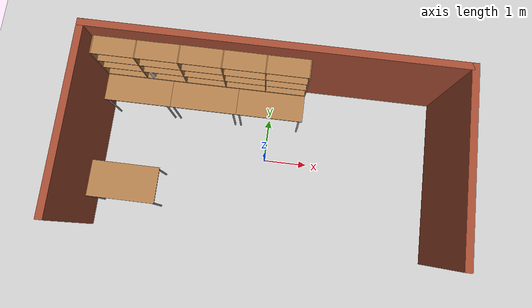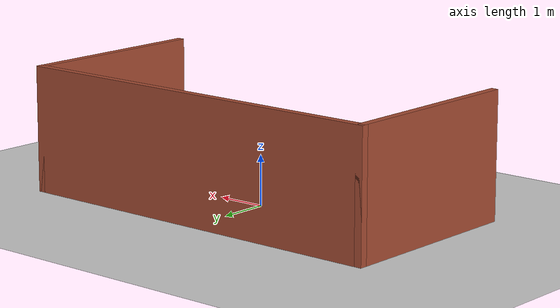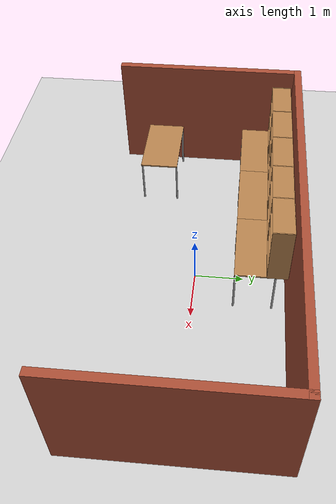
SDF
<sdf version="1.6">
 <world name="default">
  <light name="sun" type="directional">
   <pose>0 0 10 0 -0 0</pose>
   <diffuse>0.8 0.8 0.8 1</diffuse>
   <specular>0.2 0.2 0.2 1</specular>
   <attenuation>
    <range>1000</range>
    <constant>0.9</constant>
    <linear>0.01</linear>
    <quadratic>0.001</quadratic>
   </attenuation>
   <direction>-0.5 0.1 -0.9</direction>
  </light>
  <model name="ground_plane">
   <static>1</static>
   <link name="link">
    <collision name="collision">
     <geometry><plane><normal>0 0 1</normal><size>100 100</size></plane></geometry>
     <surface>
      <contact><collide_bitmask>65535</collide_bitmask></contact>
      <friction><ode><mu>100</mu><mu2>50</mu2></ode></friction>
     </surface>
    </collision>
    <visual name="visual">
     <cast_shadows>0</cast_shadows>
     <geometry><plane><normal>0 0 1</normal><size>100 100</size></plane></geometry>
     <material>
      <script><uri>file://media/materials/scripts/gazebo.material</uri><name>Gazebo/Grey</name></script>
     </material>
    </visual>
   </link>
  </model>
  <gravity>0 0 -9.8</gravity>
  <magnetic_field>6e-06 2.3e-05 -4.2e-05</magnetic_field>
  <atmosphere type="adiabatic"/>
  <physics name="default_physics" default="0" type="ode">
   <max_step_size>0.001</max_step_size>
   <real_time_factor>1</real_time_factor>
   <real_time_update_rate>1000</real_time_update_rate>
  </physics>
  <scene><ambient>0.4 0.4 0.4 1</ambient><background>0.7 0.7 0.7 1</background><shadows>1</shadows></scene>
  <audio><device>default</device></audio>
  <spherical_coordinates>
   <surface_model>EARTH_WGS84</surface_model>
   <latitude_deg>0</latitude_deg>
   <longitude_deg>0</longitude_deg>
   <elevation>0</elevation>
   <heading_deg>0</heading_deg>
  </spherical_coordinates>
  <model name="Bar">
   <link name="Wall_21">
    <collision name="Wall_21_Collision">
     <geometry><box><size>4 0.15 2.5</size></box></geometry>
     <pose>0 0 1.25 0 -0 0</pose>
    </collision>
    <visual name="Wall_21_Visual">
     <pose>0 0 1.25 0 -0 0</pose>
     <geometry><box><size>4 0.15 2.5</size></box></geometry>
     <material>
      <script><uri>file://media/materials/scripts/gazebo.material</uri><name>Gazebo/Bricks</name></script>
      <ambient>1 1 1 1</ambient>
     </material>
     <meta><layer>0</layer></meta>
    </visual>
    <pose>-3.925 0 0 0 -0 -1.5708</pose>
   </link>
   <link name="Wall_23">
    <collision name="Wall_23_Collision">
     <geometry><box><size>8 0.15 2.5</size></box></geometry>
     <pose>0 0 1.25 0 -0 0</pose>
    </collision>
    <visual name="Wall_23_Visual">
     <pose>0 0 1.25 0 -0 0</pose>
     <geometry><box><size>8 0.15 2.5</size></box></geometry>
     <material>
      <script><uri>file://media/materials/scripts/gazebo.material</uri><name>Gazebo/Bricks</name></script>
      <ambient>1 1 1 1</ambient>
     </material>
     <meta><layer>0</layer></meta>
    </visual>
    <pose>0 1.925 0 0 -0 0</pose>
   </link>
   <link name="Wall_25">
    <collision name="Wall_25_Collision">
     <geometry><box><size>4 0.15 2.5</size></box></geometry>
     <pose>0 0 1.25 0 -0 0</pose>
    </collision>
    <visual name="Wall_25_Visual">
     <pose>0 0 1.25 0 -0 0</pose>
     <geometry><box><size>4 0.15 2.5</size></box></geometry>
     <material>
      <script><uri>file://media/materials/scripts/gazebo.material</uri><name>Gazebo/Bricks</name></script>
      <ambient>1 1 1 1</ambient>
     </material>
     <meta><layer>0</layer></meta>
    </visual>
    <pose>3.925 0 0 0 -0 -1.5708</pose>
   </link>
   <static>1</static>
  </model>
  <model name="table">
   <static>1</static>
   <link name="link">
    <collision name="surface">
     <pose>0 0 1 0 -0 0</pose>
     <geometry><box><size>1.5 0.8 0.03</size></box></geometry>
     <surface><friction><ode><mu>0.6</mu><mu2>0.6</mu2></ode></friction></surface>
    </collision>
    <visual name="visual1">
     <pose>0 0 1 0 -0 0</pose>
     <geometry><box><size>1.5 0.8 0.03</size></box></geometry>
     <material>
      <script><uri>file://media/materials/scripts/gazebo.material</uri><name>Gazebo/Wood</name></script>
     </material>
    </visual>
    <collision name="front_left_leg">
     <pose>0.68 0.38 0.5 0 -0 0</pose>
     <geometry><cylinder><radius>0.02</radius><length>1</length></cylinder></geometry>
    </collision>
    <visual name="front_left_leg">
     <pose>0.68 0.38 0.5 0 -0 0</pose>
     <geometry><cylinder><radius>0.02</radius><length>1</length></cylinder></geometry>
     <material>
      <script><uri>file://media/materials/scripts/gazebo.material</uri><name>Gazebo/Grey</name></script>
     </material>
    </visual>
    <collision name="front_right_leg">
     <pose>0.68 -0.38 0.5 0 -0 0</pose>
     <geometry><cylinder><radius>0.02</radius><length>1</length></cylinder></geometry>
    </collision>
    <visual name="front_right_leg">
     <pose>0.68 -0.38 0.5 0 -0 0</pose>
     <geometry><cylinder><radius>0.02</radius><length>1</length></cylinder></geometry>
     <material>
      <script><uri>file://media/materials/scripts/gazebo.material</uri><name>Gazebo/Grey</name></script>
     </material>
    </visual>
    <collision name="back_right_leg">
     <pose>-0.68 -0.38 0.5 0 -0 0</pose>
     <geometry><cylinder><radius>0.02</radius><length>1</length></cylinder></geometry>
    </collision>
    <visual name="back_right_leg">
     <pose>-0.68 -0.38 0.5 0 -0 0</pose>
     <geometry><cylinder><radius>0.02</radius><length>1</length></cylinder></geometry>
     <material>
      <script><uri>file://media/materials/scripts/gazebo.material</uri><name>Gazebo/Grey</name></script>
     </material>
    </visual>
    <collision name="back_left_leg">
     <pose>-0.68 0.38 0.5 0 -0 0</pose>
     <geometry><cylinder><radius>0.02</radius><length>1</length></cylinder></geometry>
    </collision>
    <visual name="back_left_leg">
     <pose>-0.68 0.38 0.5 0 -0 0</pose>
     <geometry><cylinder><radius>0.02</radius><length>1</length></cylinder></geometry>
     <material>
      <script><uri>file://media/materials/scripts/gazebo.material</uri><name>Gazebo/Grey</name></script>
     </material>
    </visual>
   </link>
   <pose>-3 1.2 0 0 -0 0</pose>
  </model>
  <model name="bookshelf">
   <static>1</static>
   <link name="link">
    <inertial><mass>1</mass></inertial>
    <collision name="back">
     <pose>0 0.005 0.6 0 -0 0</pose>
     <geometry><box><size>0.9 0.01 1.2</size></box></geometry>
    </collision>
    <visual name="visual1">
     <pose>0 0.005 0.6 0 -0 0</pose>
     <geometry><box><size>0.9 0.01 1.2</size></box></geometry>
     <material>
      <script><uri>file://media/materials/scripts/gazebo.material</uri><name>Gazebo/Wood</name></script>
     </material>
    </visual>
    <collision name="left_side">
     <pose>0.45 -0.195 0.6 0 -0 0</pose>
     <geometry><box><size>0.02 0.4 1.2</size></box></geometry>
    </collision>
    <visual name="visual2">
     <pose>0.45 -0.195 0.6 0 -0 0</pose>
     <geometry><box><size>0.02 0.4 1.2</size></box></geometry>
     <material>
      <script><uri>file://media/materials/scripts/gazebo.material</uri><name>Gazebo/Wood</name></script>
     </material>
    </visual>
    <collision name="right_side">
     <pose>-0.45 -0.195 0.6 0 -0 0</pose>
     <geometry><box><size>0.02 0.4 1.2</size></box></geometry>
    </collision>
    <visual name="visual3">
     <pose>-0.45 -0.195 0.6 0 -0 0</pose>
     <geometry><box><size>0.02 0.4 1.2</size></box></geometry>
     <material>
      <script><uri>file://media/materials/scripts/gazebo.material</uri><name>Gazebo/Wood</name></script>
     </material>
    </visual>
    <collision name="bottom">
     <pose>0 -0.195 0.03 0 -0 0</pose>
     <geometry><box><size>0.88 0.4 0.06</size></box></geometry>
    </collision>
    <visual name="visual4">
     <pose>0 -0.195 0.03 0 -0 0</pose>
     <geometry><box><size>0.88 0.4 0.06</size></box></geometry>
     <material>
      <script><uri>file://media/materials/scripts/gazebo.material</uri><name>Gazebo/Wood</name></script>
     </material>
    </visual>
    <collision name="top">
     <pose>0 -0.195 1.19 0 -0 0</pose>
     <geometry><box><size>0.88 0.4 0.02</size></box></geometry>
    </collision>
    <visual name="visual5">
     <pose>0 -0.195 1.19 0 -0 0</pose>
     <geometry><box><size>0.88 0.4 0.02</size></box></geometry>
     <material>
      <script><uri>file://media/materials/scripts/gazebo.material</uri><name>Gazebo/Wood</name></script>
     </material>
    </visual>
    <collision name="low_shelf">
     <pose>0 -0.195 0.43 0 -0 0</pose>
     <geometry><box><size>0.88 0.4 0.02</size></box></geometry>
    </collision>
    <visual name="visual6">
     <pose>0 -0.195 0.43 0 -0 0</pose>
     <geometry><box><size>0.88 0.4 0.02</size></box></geometry>
     <material>
      <script><uri>file://media/materials/scripts/gazebo.material</uri><name>Gazebo/Wood</name></script>
     </material>
    </visual>
    <collision name="high_shelf">
     <pose>0 -0.195 0.8 0 -0 0</pose>
     <geometry><box><size>0.88 0.4 0.02</size></box></geometry>
    </collision>
    <visual name="visual7">
     <pose>0 -0.195 0.8 0 -0 0</pose>
     <geometry><box><size>0.88 0.4 0.02</size></box></geometry>
     <material>
      <script><uri>file://media/materials/scripts/gazebo.material</uri><name>Gazebo/Wood</name></script>
     </material>
    </visual>
   </link>
   <pose>-3.3 1.8 1 0 -0 0</pose>
  </model>
  <model name="table_clone">
   <static>1</static>
   <link name="link">
    <collision name="surface">
     <pose>0 0 1 0 -0 0</pose>
     <geometry><box><size>1.5 0.8 0.03</size></box></geometry>
     <surface><friction><ode><mu>0.6</mu><mu2>0.6</mu2></ode></friction></surface>
    </collision>
    <visual name="visual1">
     <pose>0 0 1 0 -0 0</pose>
     <geometry><box><size>1.5 0.8 0.03</size></box></geometry>
     <material>
      <script><uri>file://media/materials/scripts/gazebo.material</uri><name>Gazebo/Wood</name></script>
     </material>
    </visual>
    <collision name="front_left_leg">
     <pose>0.68 0.38 0.5 0 -0 0</pose>
     <geometry><cylinder><radius>0.02</radius><length>1</length></cylinder></geometry>
    </collision>
    <visual name="front_left_leg">
     <pose>0.68 0.38 0.5 0 -0 0</pose>
     <geometry><cylinder><radius>0.02</radius><length>1</length></cylinder></geometry>
     <material>
      <script><uri>file://media/materials/scripts/gazebo.material</uri><name>Gazebo/Grey</name></script>
     </material>
    </visual>
    <collision name="front_right_leg">
     <pose>0.68 -0.38 0.5 0 -0 0</pose>
     <geometry><cylinder><radius>0.02</radius><length>1</length></cylinder></geometry>
    </collision>
    <visual name="front_right_leg">
     <pose>0.68 -0.38 0.5 0 -0 0</pose>
     <geometry><cylinder><radius>0.02</radius><length>1</length></cylinder></geometry>
     <material>
      <script><uri>file://media/materials/scripts/gazebo.material</uri><name>Gazebo/Grey</name></script>
     </material>
    </visual>
    <collision name="back_right_leg">
     <pose>-0.68 -0.38 0.5 0 -0 0</pose>
     <geometry><cylinder><radius>0.02</radius><length>1</length></cylinder></geometry>
    </collision>
    <visual name="back_right_leg">
     <pose>-0.68 -0.38 0.5 0 -0 0</pose>
     <geometry><cylinder><radius>0.02</radius><length>1</length></cylinder></geometry>
     <material>
      <script><uri>file://media/materials/scripts/gazebo.material</uri><name>Gazebo/Grey</name></script>
     </material>
    </visual>
    <collision name="back_left_leg">
     <pose>-0.68 0.38 0.5 0 -0 0</pose>
     <geometry><cylinder><radius>0.02</radius><length>1</length></cylinder></geometry>
    </collision>
    <visual name="back_left_leg">
     <pose>-0.68 0.38 0.5 0 -0 0</pose>
     <geometry><cylinder><radius>0.02</radius><length>1</length></cylinder></geometry>
     <material>
      <script><uri>file://media/materials/scripts/gazebo.material</uri><name>Gazebo/Grey</name></script>
     </material>
    </visual>
   </link>
   <pose>-1.5 1.2 0 0 -0 0</pose>
  </model>
  <model name="table_clone_clone">
   <static>1</static>
   <link name="link">
    <collision name="surface">
     <pose>0 0 1 0 -0 0</pose>
     <geometry><box><size>1.5 0.8 0.03</size></box></geometry>
     <surface><friction><ode><mu>0.6</mu><mu2>0.6</mu2></ode></friction></surface>
    </collision>
    <visual name="visual1">
     <pose>0 0 1 0 -0 0</pose>
     <geometry><box><size>1.5 0.8 0.03</size></box></geometry>
     <material>
      <script><uri>file://media/materials/scripts/gazebo.material</uri><name>Gazebo/Wood</name></script>
     </material>
    </visual>
    <collision name="front_left_leg">
     <pose>0.68 0.38 0.5 0 -0 0</pose>
     <geometry><cylinder><radius>0.02</radius><length>1</length></cylinder></geometry>
    </collision>
    <visual name="front_left_leg">
     <pose>0.68 0.38 0.5 0 -0 0</pose>
     <geometry><cylinder><radius>0.02</radius><length>1</length></cylinder></geometry>
     <material>
      <script><uri>file://media/materials/scripts/gazebo.material</uri><name>Gazebo/Grey</name></script>
     </material>
    </visual>
    <collision name="front_right_leg">
     <pose>0.68 -0.38 0.5 0 -0 0</pose>
     <geometry><cylinder><radius>0.02</radius><length>1</length></cylinder></geometry>
    </collision>
    <visual name="front_right_leg">
     <pose>0.68 -0.38 0.5 0 -0 0</pose>
     <geometry><cylinder><radius>0.02</radius><length>1</length></cylinder></geometry>
     <material>
      <script><uri>file://media/materials/scripts/gazebo.material</uri><name>Gazebo/Grey</name></script>
     </material>
    </visual>
    <collision name="back_right_leg">
     <pose>-0.68 -0.38 0.5 0 -0 0</pose>
     <geometry><cylinder><radius>0.02</radius><length>1</length></cylinder></geometry>
    </collision>
    <visual name="back_right_leg">
     <pose>-0.68 -0.38 0.5 0 -0 0</pose>
     <geometry><cylinder><radius>0.02</radius><length>1</length></cylinder></geometry>
     <material>
      <script><uri>file://media/materials/scripts/gazebo.material</uri><name>Gazebo/Grey</name></script>
     </material>
    </visual>
    <collision name="back_left_leg">
     <pose>-0.68 0.38 0.5 0 -0 0</pose>
     <geometry><cylinder><radius>0.02</radius><length>1</length></cylinder></geometry>
    </collision>
    <visual name="back_left_leg">
     <pose>-0.68 0.38 0.5 0 -0 0</pose>
     <geometry><cylinder><radius>0.02</radius><length>1</length></cylinder></geometry>
     <material>
      <script><uri>file://media/materials/scripts/gazebo.material</uri><name>Gazebo/Grey</name></script>
     </material>
    </visual>
   </link>
   <pose>0 1.2 0 0 -0 0</pose>
  </model>
  <model name="bookshelf_clone">
   <static>1</static>
   <link name="link">
    <inertial><mass>1</mass></inertial>
    <collision name="back">
     <pose>0 0.005 0.6 0 -0 0</pose>
     <geometry><box><size>0.9 0.01 1.2</size></box></geometry>
    </collision>
    <visual name="visual1">
     <pose>0 0.005 0.6 0 -0 0</pose>
     <geometry><box><size>0.9 0.01 1.2</size></box></geometry>
     <material>
      <script><uri>file://media/materials/scripts/gazebo.material</uri><name>Gazebo/Wood</name></script>
     </material>
    </visual>
    <collision name="left_side">
     <pose>0.45 -0.195 0.6 0 -0 0</pose>
     <geometry><box><size>0.02 0.4 1.2</size></box></geometry>
    </collision>
    <visual name="visual2">
     <pose>0.45 -0.195 0.6 0 -0 0</pose>
     <geometry><box><size>0.02 0.4 1.2</size></box></geometry>
     <material>
      <script><uri>file://media/materials/scripts/gazebo.material</uri><name>Gazebo/Wood</name></script>
     </material>
    </visual>
    <collision name="right_side">
     <pose>-0.45 -0.195 0.6 0 -0 0</pose>
     <geometry><box><size>0.02 0.4 1.2</size></box></geometry>
    </collision>
    <visual name="visual3">
     <pose>-0.45 -0.195 0.6 0 -0 0</pose>
     <geometry><box><size>0.02 0.4 1.2</size></box></geometry>
     <material>
      <script><uri>file://media/materials/scripts/gazebo.material</uri><name>Gazebo/Wood</name></script>
     </material>
    </visual>
    <collision name="bottom">
     <pose>0 -0.195 0.03 0 -0 0</pose>
     <geometry><box><size>0.88 0.4 0.06</size></box></geometry>
    </collision>
    <visual name="visual4">
     <pose>0 -0.195 0.03 0 -0 0</pose>
     <geometry><box><size>0.88 0.4 0.06</size></box></geometry>
     <material>
      <script><uri>file://media/materials/scripts/gazebo.material</uri><name>Gazebo/Wood</name></script>
     </material>
    </visual>
    <collision name="top">
     <pose>0 -0.195 1.19 0 -0 0</pose>
     <geometry><box><size>0.88 0.4 0.02</size></box></geometry>
    </collision>
    <visual name="visual5">
     <pose>0 -0.195 1.19 0 -0 0</pose>
     <geometry><box><size>0.88 0.4 0.02</size></box></geometry>
     <material>
      <script><uri>file://media/materials/scripts/gazebo.material</uri><name>Gazebo/Wood</name></script>
     </material>
    </visual>
    <collision name="low_shelf">
     <pose>0 -0.195 0.43 0 -0 0</pose>
     <geometry><box><size>0.88 0.4 0.02</size></box></geometry>
    </collision>
    <visual name="visual6">
     <pose>0 -0.195 0.43 0 -0 0</pose>
     <geometry><box><size>0.88 0.4 0.02</size></box></geometry>
     <material>
      <script><uri>file://media/materials/scripts/gazebo.material</uri><name>Gazebo/Wood</name></script>
     </material>
    </visual>
    <collision name="high_shelf">
     <pose>0 -0.195 0.8 0 -0 0</pose>
     <geometry><box><size>0.88 0.4 0.02</size></box></geometry>
    </collision>
    <visual name="visual7">
     <pose>0 -0.195 0.8 0 -0 0</pose>
     <geometry><box><size>0.88 0.4 0.02</size></box></geometry>
     <material>
      <script><uri>file://media/materials/scripts/gazebo.material</uri><name>Gazebo/Wood</name></script>
     </material>
    </visual>
   </link>
   <pose>-2.4 1.8 1 0 -0 0</pose>
  </model>
  <model name="bookshelf_clone_0">
   <static>1</static>
   <link name="link">
    <inertial><mass>1</mass></inertial>
    <collision name="back">
     <pose>0 0.005 0.6 0 -0 0</pose>
     <geometry><box><size>0.9 0.01 1.2</size></box></geometry>
    </collision>
    <visual name="visual1">
     <pose>0 0.005 0.6 0 -0 0</pose>
     <geometry><box><size>0.9 0.01 1.2</size></box></geometry>
     <material>
      <script><uri>file://media/materials/scripts/gazebo.material</uri><name>Gazebo/Wood</name></script>
     </material>
    </visual>
    <collision name="left_side">
     <pose>0.45 -0.195 0.6 0 -0 0</pose>
     <geometry><box><size>0.02 0.4 1.2</size></box></geometry>
    </collision>
    <visual name="visual2">
     <pose>0.45 -0.195 0.6 0 -0 0</pose>
     <geometry><box><size>0.02 0.4 1.2</size></box></geometry>
     <material>
      <script><uri>file://media/materials/scripts/gazebo.material</uri><name>Gazebo/Wood</name></script>
     </material>
    </visual>
    <collision name="right_side">
     <pose>-0.45 -0.195 0.6 0 -0 0</pose>
     <geometry><box><size>0.02 0.4 1.2</size></box></geometry>
    </collision>
    <visual name="visual3">
     <pose>-0.45 -0.195 0.6 0 -0 0</pose>
     <geometry><box><size>0.02 0.4 1.2</size></box></geometry>
     <material>
      <script><uri>file://media/materials/scripts/gazebo.material</uri><name>Gazebo/Wood</name></script>
     </material>
    </visual>
    <collision name="bottom">
     <pose>0 -0.195 0.03 0 -0 0</pose>
     <geometry><box><size>0.88 0.4 0.06</size></box></geometry>
    </collision>
    <visual name="visual4">
     <pose>0 -0.195 0.03 0 -0 0</pose>
     <geometry><box><size>0.88 0.4 0.06</size></box></geometry>
     <material>
      <script><uri>file://media/materials/scripts/gazebo.material</uri><name>Gazebo/Wood</name></script>
     </material>
    </visual>
    <collision name="top">
     <pose>0 -0.195 1.19 0 -0 0</pose>
     <geometry><box><size>0.88 0.4 0.02</size></box></geometry>
    </collision>
    <visual name="visual5">
     <pose>0 -0.195 1.19 0 -0 0</pose>
     <geometry><box><size>0.88 0.4 0.02</size></box></geometry>
     <material>
      <script><uri>file://media/materials/scripts/gazebo.material</uri><name>Gazebo/Wood</name></script>
     </material>
    </visual>
    <collision name="low_shelf">
     <pose>0 -0.195 0.43 0 -0 0</pose>
     <geometry><box><size>0.88 0.4 0.02</size></box></geometry>
    </collision>
    <visual name="visual6">
     <pose>0 -0.195 0.43 0 -0 0</pose>
     <geometry><box><size>0.88 0.4 0.02</size></box></geometry>
     <material>
      <script><uri>file://media/materials/scripts/gazebo.material</uri><name>Gazebo/Wood</name></script>
     </material>
    </visual>
    <collision name="high_shelf">
     <pose>0 -0.195 0.8 0 -0 0</pose>
     <geometry><box><size>0.88 0.4 0.02</size></box></geometry>
    </collision>
    <visual name="visual7">
     <pose>0 -0.195 0.8 0 -0 0</pose>
     <geometry><box><size>0.88 0.4 0.02</size></box></geometry>
     <material>
      <script><uri>file://media/materials/scripts/gazebo.material</uri><name>Gazebo/Wood</name></script>
     </material>
    </visual>
   </link>
   <pose>-1.5 1.8 1 0 -0 0</pose>
  </model>
  <model name="bookshelf_clone_1">
   <static>1</static>
   <link name="link">
    <inertial><mass>1</mass></inertial>
    <collision name="back">
     <pose>0 0.005 0.6 0 -0 0</pose>
     <geometry><box><size>0.9 0.01 1.2</size></box></geometry>
    </collision>
    <visual name="visual1">
     <pose>0 0.005 0.6 0 -0 0</pose>
     <geometry><box><size>0.9 0.01 1.2</size></box></geometry>
     <material>
      <script><uri>file://media/materials/scripts/gazebo.material</uri><name>Gazebo/Wood</name></script>
     </material>
    </visual>
    <collision name="left_side">
     <pose>0.45 -0.195 0.6 0 -0 0</pose>
     <geometry><box><size>0.02 0.4 1.2</size></box></geometry>
    </collision>
    <visual name="visual2">
     <pose>0.45 -0.195 0.6 0 -0 0</pose>
     <geometry><box><size>0.02 0.4 1.2</size></box></geometry>
     <material>
      <script><uri>file://media/materials/scripts/gazebo.material</uri><name>Gazebo/Wood</name></script>
     </material>
    </visual>
    <collision name="right_side">
     <pose>-0.45 -0.195 0.6 0 -0 0</pose>
     <geometry><box><size>0.02 0.4 1.2</size></box></geometry>
    </collision>
    <visual name="visual3">
     <pose>-0.45 -0.195 0.6 0 -0 0</pose>
     <geometry><box><size>0.02 0.4 1.2</size></box></geometry>
     <material>
      <script><uri>file://media/materials/scripts/gazebo.material</uri><name>Gazebo/Wood</name></script>
     </material>
    </visual>
    <collision name="bottom">
     <pose>0 -0.195 0.03 0 -0 0</pose>
     <geometry><box><size>0.88 0.4 0.06</size></box></geometry>
    </collision>
    <visual name="visual4">
     <pose>0 -0.195 0.03 0 -0 0</pose>
     <geometry><box><size>0.88 0.4 0.06</size></box></geometry>
     <material>
      <script><uri>file://media/materials/scripts/gazebo.material</uri><name>Gazebo/Wood</name></script>
     </material>
    </visual>
    <collision name="top">
     <pose>0 -0.195 1.19 0 -0 0</pose>
     <geometry><box><size>0.88 0.4 0.02</size></box></geometry>
    </collision>
    <visual name="visual5">
     <pose>0 -0.195 1.19 0 -0 0</pose>
     <geometry><box><size>0.88 0.4 0.02</size></box></geometry>
     <material>
      <script><uri>file://media/materials/scripts/gazebo.material</uri><name>Gazebo/Wood</name></script>
     </material>
    </visual>
    <collision name="low_shelf">
     <pose>0 -0.195 0.43 0 -0 0</pose>
     <geometry><box><size>0.88 0.4 0.02</size></box></geometry>
    </collision>
    <visual name="visual6">
     <pose>0 -0.195 0.43 0 -0 0</pose>
     <geometry><box><size>0.88 0.4 0.02</size></box></geometry>
     <material>
      <script><uri>file://media/materials/scripts/gazebo.material</uri><name>Gazebo/Wood</name></script>
     </material>
    </visual>
    <collision name="high_shelf">
     <pose>0 -0.195 0.8 0 -0 0</pose>
     <geometry><box><size>0.88 0.4 0.02</size></box></geometry>
    </collision>
    <visual name="visual7">
     <pose>0 -0.195 0.8 0 -0 0</pose>
     <geometry><box><size>0.88 0.4 0.02</size></box></geometry>
     <material>
      <script><uri>file://media/materials/scripts/gazebo.material</uri><name>Gazebo/Wood</name></script>
     </material>
    </visual>
   </link>
   <pose>-0.6 1.8 1 0 -0 0</pose>
  </model>
  <model name="bookshelf_clone_1_clone">
   <static>1</static>
   <link name="link">
    <inertial><mass>1</mass></inertial>
    <collision name="back">
     <pose>0 0.005 0.6 0 -0 0</pose>
     <geometry><box><size>0.9 0.01 1.2</size></box></geometry>
    </collision>
    <visual name="visual1">
     <pose>0 0.005 0.6 0 -0 0</pose>
     <geometry><box><size>0.9 0.01 1.2</size></box></geometry>
     <material>
      <script><uri>file://media/materials/scripts/gazebo.material</uri><name>Gazebo/Wood</name></script>
     </material>
    </visual>
    <collision name="left_side">
     <pose>0.45 -0.195 0.6 0 -0 0</pose>
     <geometry><box><size>0.02 0.4 1.2</size></box></geometry>
    </collision>
    <visual name="visual2">
     <pose>0.45 -0.195 0.6 0 -0 0</pose>
     <geometry><box><size>0.02 0.4 1.2</size></box></geometry>
     <material>
      <script><uri>file://media/materials/scripts/gazebo.material</uri><name>Gazebo/Wood</name></script>
     </material>
    </visual>
    <collision name="right_side">
     <pose>-0.45 -0.195 0.6 0 -0 0</pose>
     <geometry><box><size>0.02 0.4 1.2</size></box></geometry>
    </collision>
    <visual name="visual3">
     <pose>-0.45 -0.195 0.6 0 -0 0</pose>
     <geometry><box><size>0.02 0.4 1.2</size></box></geometry>
     <material>
      <script><uri>file://media/materials/scripts/gazebo.material</uri><name>Gazebo/Wood</name></script>
     </material>
    </visual>
    <collision name="bottom">
     <pose>0 -0.195 0.03 0 -0 0</pose>
     <geometry><box><size>0.88 0.4 0.06</size></box></geometry>
    </collision>
    <visual name="visual4">
     <pose>0 -0.195 0.03 0 -0 0</pose>
     <geometry><box><size>0.88 0.4 0.06</size></box></geometry>
     <material>
      <script><uri>file://media/materials/scripts/gazebo.material</uri><name>Gazebo/Wood</name></script>
     </material>
    </visual>
    <collision name="top">
     <pose>0 -0.195 1.19 0 -0 0</pose>
     <geometry><box><size>0.88 0.4 0.02</size></box></geometry>
    </collision>
    <visual name="visual5">
     <pose>0 -0.195 1.19 0 -0 0</pose>
     <geometry><box><size>0.88 0.4 0.02</size></box></geometry>
     <material>
      <script><uri>file://media/materials/scripts/gazebo.material</uri><name>Gazebo/Wood</name></script>
     </material>
    </visual>
    <collision name="low_shelf">
     <pose>0 -0.195 0.43 0 -0 0</pose>
     <geometry><box><size>0.88 0.4 0.02</size></box></geometry>
    </collision>
    <visual name="visual6">
     <pose>0 -0.195 0.43 0 -0 0</pose>
     <geometry><box><size>0.88 0.4 0.02</size></box></geometry>
     <material>
      <script><uri>file://media/materials/scripts/gazebo.material</uri><name>Gazebo/Wood</name></script>
     </material>
    </visual>
    <collision name="high_shelf">
     <pose>0 -0.195 0.8 0 -0 0</pose>
     <geometry><box><size>0.88 0.4 0.02</size></box></geometry>
    </collision>
    <visual name="visual7">
     <pose>0 -0.195 0.8 0 -0 0</pose>
     <geometry><box><size>0.88 0.4 0.02</size></box></geometry>
     <material>
      <script><uri>file://media/materials/scripts/gazebo.material</uri><name>Gazebo/Wood</name></script>
     </material>
    </visual>
   </link>
   <pose>0.3 1.8 1 0 -0 0</pose>
  </model>
  <model name="beer">
   <link name="link">
    <pose>0 0 0.115 0 -0 0</pose>
    <inertial>
     <mass>0.39</mass>
     <inertia><ixx>0.00058</ixx><ixy>0</ixy><ixz>0</ixz><iyy>0.00058</iyy><iyz>0</iyz><izz>0.00019</izz></inertia>
    </inertial>
    <collision name="collision">
     <geometry><cylinder><radius>0.055</radius><length>0.23</length></cylinder></geometry>
    </collision>
    <visual name="visual">
     <geometry><cylinder><radius>0.055</radius><length>0.23</length></cylinder></geometry>
     <material>
      <script>
       <uri>model://beer/materials/scripts</uri>
       <uri>model://beer/materials/textures</uri>
       <name>Beer/Diffuse</name>
      </script>
     </material>
    </visual>
   </link>
   <pose>-2.71286 1.48099 1.05999 -1e-06 2.7e-05 0.000369</pose>
  </model>
  <model name="table_0">
   <static>1</static>
   <link name="link">
    <collision name="surface">
     <pose>0 0 1 0 -0 0</pose>
     <geometry><box><size>1.5 0.8 0.03</size></box></geometry>
     <surface><friction><ode><mu>0.6</mu><mu2>0.6</mu2></ode></friction></surface>
    </collision>
    <visual name="visual1">
     <pose>0 0 1 0 -0 0</pose>
     <geometry><box><size>1.5 0.8 0.03</size></box></geometry>
     <material>
      <script><uri>file://media/materials/scripts/gazebo.material</uri><name>Gazebo/Wood</name></script>
     </material>
    </visual>
    <collision name="front_left_leg">
     <pose>0.68 0.38 0.5 0 -0 0</pose>
     <geometry><cylinder><radius>0.02</radius><length>1</length></cylinder></geometry>
    </collision>
    <visual name="front_left_leg">
     <pose>0.68 0.38 0.5 0 -0 0</pose>
     <geometry><cylinder><radius>0.02</radius><length>1</length></cylinder></geometry>
     <material>
      <script><uri>file://media/materials/scripts/gazebo.material</uri><name>Gazebo/Grey</name></script>
     </material>
    </visual>
    <collision name="front_right_leg">
     <pose>0.68 -0.38 0.5 0 -0 0</pose>
     <geometry><cylinder><radius>0.02</radius><length>1</length></cylinder></geometry>
    </collision>
    <visual name="front_right_leg">
     <pose>0.68 -0.38 0.5 0 -0 0</pose>
     <geometry><cylinder><radius>0.02</radius><length>1</length></cylinder></geometry>
     <material>
      <script><uri>file://media/materials/scripts/gazebo.material</uri><name>Gazebo/Grey</name></script>
     </material>
    </visual>
    <collision name="back_right_leg">
     <pose>-0.68 -0.38 0.5 0 -0 0</pose>
     <geometry><cylinder><radius>0.02</radius><length>1</length></cylinder></geometry>
    </collision>
    <visual name="back_right_leg">
     <pose>-0.68 -0.38 0.5 0 -0 0</pose>
     <geometry><cylinder><radius>0.02</radius><length>1</length></cylinder></geometry>
     <material>
      <script><uri>file://media/materials/scripts/gazebo.material</uri><name>Gazebo/Grey</name></script>
     </material>
    </visual>
    <collision name="back_left_leg">
     <pose>-0.68 0.38 0.5 0 -0 0</pose>
     <geometry><cylinder><radius>0.02</radius><length>1</length></cylinder></geometry>
    </collision>
    <visual name="back_left_leg">
     <pose>-0.68 0.38 0.5 0 -0 0</pose>
     <geometry><cylinder><radius>0.02</radius><length>1</length></cylinder></geometry>
     <material>
      <script><uri>file://media/materials/scripts/gazebo.material</uri><name>Gazebo/Grey</name></script>
     </material>
    </visual>
   </link>
   <pose>-3 -1 0 0 -0 0</pose>
  </model>
 </world>
</sdf>
